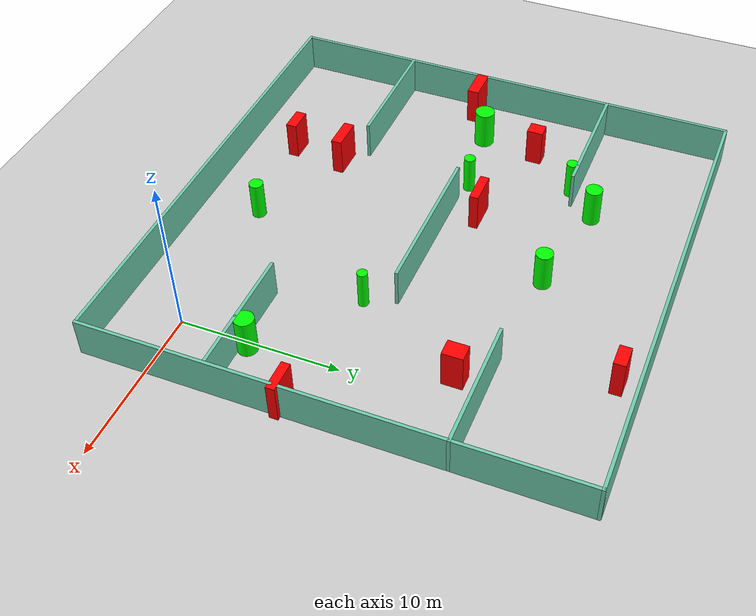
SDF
<sdf version="1.7">
 <world name="default">
  <light name="sun" type="directional">
   <pose>0 0 10 0 -0 0</pose>
   <diffuse>0.8 0.8 0.8 1</diffuse>
   <specular>0.2 0.2 0.2 1</specular>
   <attenuation>
    <range>1000</range>
    <constant>0.9</constant>
    <linear>0.01</linear>
    <quadratic>0.001</quadratic>
   </attenuation>
   <direction>-0.5 0.1 -0.9</direction>
   <spot><inner_angle>0</inner_angle><outer_angle>0</outer_angle><falloff>0</falloff></spot>
  </light>
  <model name="ground_plane">
   <static>1</static>
   <link name="link">
    <collision name="collision">
     <geometry><plane><normal>0 0 1</normal><size>100 100</size></plane></geometry>
     <surface>
      <contact><collide_bitmask>65535</collide_bitmask></contact>
      <friction><ode><mu>100</mu><mu2>50</mu2></ode></friction>
     </surface>
    </collision>
    <visual name="visual">
     <cast_shadows>0</cast_shadows>
     <geometry><plane><normal>0 0 1</normal><size>100 100</size></plane></geometry>
     <material>
      <script><uri>file://media/materials/scripts/gazebo.material</uri><name>Gazebo/Grey</name></script>
     </material>
    </visual>
   </link>
  </model>
  <gravity>0 0 -9.8</gravity>
  <magnetic_field>6e-06 2.3e-05 -4.2e-05</magnetic_field>
  <atmosphere type="adiabatic"/>
  <physics type="ode">
   <max_step_size>0.001</max_step_size>
   <real_time_factor>1</real_time_factor>
   <real_time_update_rate>1000</real_time_update_rate>
  </physics>
  <scene><ambient>0.4 0.4 0.4 1</ambient><background>0.7 0.7 0.7 1</background><shadows>1</shadows></scene>
  <spherical_coordinates>
   <surface_model>EARTH_WGS84</surface_model>
   <latitude_deg>0</latitude_deg>
   <longitude_deg>0</longitude_deg>
   <elevation>0</elevation>
   <heading_deg>0</heading_deg>
  </spherical_coordinates>
  <model name="my_base_walls">
   <link name="Wall_10">
    <collision name="Wall_10_Collision">
     <geometry><box><size>8.2 0.2 2.5</size></box></geometry>
     <pose>0 0 1.25 0 -0 0</pose>
    </collision>
    <visual name="Wall_10_Visual">
     <pose>0 0 1.25 0 -0 0</pose>
     <geometry><box><size>8.2 0.2 2.5</size></box></geometry>
     <material>
      <script><uri>file://media/materials/scripts/gazebo.material</uri><name>Gazebo/Grey</name></script>
      <ambient>0.435294 0.796078 0.67451 1</ambient>
     </material>
     <meta><layer>0</layer></meta>
    </visual>
    <pose>-11 -7 0 0 -0 0</pose>
   </link>
   <link name="Wall_12">
    <collision name="Wall_12_Collision">
     <geometry><box><size>8.2 0.2 2.5</size></box></geometry>
     <pose>0 0 1.25 0 -0 0</pose>
    </collision>
    <visual name="Wall_12_Visual">
     <pose>0 0 1.25 0 -0 0</pose>
     <geometry><box><size>8.2 0.2 2.5</size></box></geometry>
     <material>
      <script><uri>file://media/materials/scripts/gazebo.material</uri><name>Gazebo/Grey</name></script>
      <ambient>0.435294 0.796078 0.67451 1</ambient>
     </material>
     <meta><layer>0</layer></meta>
    </visual>
    <pose>-11 7 0 0 -0 0</pose>
   </link>
   <link name="Wall_14">
    <collision name="Wall_14_Collision">
     <geometry><box><size>8.2 0.2 2.5</size></box></geometry>
     <pose>0 0 1.25 0 -0 0</pose>
    </collision>
    <visual name="Wall_14_Visual">
     <pose>0 0 1.25 0 -0 0</pose>
     <geometry><box><size>8.2 0.2 2.5</size></box></geometry>
     <material>
      <script><uri>file://media/materials/scripts/gazebo.material</uri><name>Gazebo/Grey</name></script>
      <ambient>0.435294 0.796078 0.67451 1</ambient>
     </material>
     <meta><layer>0</layer></meta>
    </visual>
    <pose>11 7 0 0 -0 3.14159</pose>
   </link>
   <link name="Wall_16">
    <collision name="Wall_16_Collision">
     <geometry><box><size>10.2 0.2 2.5</size></box></geometry>
     <pose>0 0 1.25 0 -0 0</pose>
    </collision>
    <visual name="Wall_16_Visual">
     <pose>0 0 1.25 0 -0 0</pose>
     <geometry><box><size>10.2 0.2 2.5</size></box></geometry>
     <material>
      <script><uri>file://media/materials/scripts/gazebo.material</uri><name>Gazebo/Grey</name></script>
      <ambient>0.435294 0.796078 0.67451 1</ambient>
     </material>
     <meta><layer>0</layer></meta>
    </visual>
    <pose>0 0 0 0 -0 3.14159</pose>
   </link>
   <link name="Wall_2">
    <collision name="Wall_2_Collision">
     <geometry><box><size>30.2 0.2 2.5</size></box></geometry>
     <pose>0 0 1.25 0 -0 0</pose>
    </collision>
    <visual name="Wall_2_Visual">
     <pose>0 0 1.25 0 -0 0</pose>
     <geometry><box><size>30.2 0.2 2.5</size></box></geometry>
     <material>
      <script><uri>file://media/materials/scripts/gazebo.material</uri><name>Gazebo/Grey</name></script>
      <ambient>0.435294 0.796078 0.67451 1</ambient>
     </material>
     <meta><layer>0</layer></meta>
    </visual>
    <pose>0 -15 0 0 -0 3.14159</pose>
   </link>
   <link name="Wall_3">
    <collision name="Wall_3_Collision">
     <geometry><box><size>30.2 0.2 2.5</size></box></geometry>
     <pose>0 0 1.25 0 -0 0</pose>
    </collision>
    <visual name="Wall_3_Visual">
     <pose>0 0 1.25 0 -0 0</pose>
     <geometry><box><size>30.2 0.2 2.5</size></box></geometry>
     <material>
      <script><uri>file://media/materials/scripts/gazebo.material</uri><name>Gazebo/Grey</name></script>
      <ambient>0.435294 0.796078 0.67451 1</ambient>
     </material>
     <meta><layer>0</layer></meta>
    </visual>
    <pose>-15 0 0 0 -0 1.5708</pose>
   </link>
   <link name="Wall_4">
    <collision name="Wall_4_Collision">
     <geometry><box><size>30.2 0.2 2.5</size></box></geometry>
     <pose>0 0 1.25 0 -0 0</pose>
    </collision>
    <visual name="Wall_4_Visual">
     <pose>0 0 1.25 0 -0 0</pose>
     <geometry><box><size>30.2 0.2 2.5</size></box></geometry>
     <material>
      <script><uri>file://media/materials/scripts/gazebo.material</uri><name>Gazebo/Grey</name></script>
      <ambient>0.435294 0.796078 0.67451 1</ambient>
     </material>
     <meta><layer>0</layer></meta>
    </visual>
    <pose>0 15 0 0 -0 0</pose>
   </link>
   <link name="Wall_6">
    <collision name="Wall_6_Collision">
     <geometry><box><size>30.2 0.2 2.5</size></box></geometry>
     <pose>0 0 1.25 0 -0 0</pose>
    </collision>
    <visual name="Wall_6_Visual">
     <pose>0 0 1.25 0 -0 0</pose>
     <geometry><box><size>30.2 0.2 2.5</size></box></geometry>
     <material>
      <script><uri>file://media/materials/scripts/gazebo.material</uri><name>Gazebo/Grey</name></script>
      <ambient>0.435294 0.796078 0.67451 1</ambient>
     </material>
     <meta><layer>0</layer></meta>
    </visual>
    <pose>15 0 0 0 -0 1.5708</pose>
   </link>
   <link name="Wall_8">
    <collision name="Wall_8_Collision">
     <geometry><box><size>8.2 0.2 2.5</size></box></geometry>
     <pose>0 0 1.25 0 -0 0</pose>
    </collision>
    <visual name="Wall_8_Visual">
     <pose>0 0 1.25 0 -0 0</pose>
     <geometry><box><size>8.2 0.2 2.5</size></box></geometry>
     <material>
      <script><uri>file://media/materials/scripts/gazebo.material</uri><name>Gazebo/Grey</name></script>
      <ambient>0.435294 0.796078 0.67451 1</ambient>
     </material>
     <meta><layer>0</layer></meta>
    </visual>
    <pose>11 -7 0 0 -0 3.14159</pose>
   </link>
   <static>1</static>
   <pose>-11 11 0 0 -0 0</pose>
  </model>
  <model name="cylinder1">
   <static>1</static>
   <link name="link">
    <inertial>
     <mass>1</mass>
     <inertia><ixx>0.5</ixx><ixy>0</ixy><ixz>0</ixz><iyy>0.5</iyy><iyz>0</iyz><izz>1</izz></inertia>
    </inertial>
    <collision name="collision">
     <geometry><cylinder><radius>0.323207683018099</radius><length>2.5</length></cylinder></geometry>
    </collision>
    <visual name="visual">
     <geometry><cylinder><radius>0.323207683018099</radius><length>2.5</length></cylinder></geometry>
     <material>
      <ambient>0 1 0 1</ambient>
      <diffuse>0 1 0 1</diffuse>
      <specular>0.1 0.1 0.1 1</specular>
      <emissive>0 0 0 0</emissive>
     </material>
    </visual>
   </link>
   <pose>-5.242812602132382 9.169725267744901 1.25 0 0 0</pose>
  </model>
  <model name="cylinder2">
   <static>1</static>
   <link name="link">
    <inertial>
     <mass>1</mass>
     <inertia><ixx>0.5</ixx><ixy>0</ixy><ixz>0</ixz><iyy>0.5</iyy><iyz>0</iyz><izz>1</izz></inertia>
    </inertial>
    <collision name="collision">
     <geometry><cylinder><radius>0.44611260763702354</radius><length>2.5</length></cylinder></geometry>
    </collision>
    <visual name="visual">
     <geometry><cylinder><radius>0.44611260763702354</radius><length>2.5</length></cylinder></geometry>
     <material>
      <ambient>0 1 0 1</ambient>
      <diffuse>0 1 0 1</diffuse>
      <specular>0.1 0.1 0.1 1</specular>
      <emissive>0 0 0 0</emissive>
     </material>
    </visual>
   </link>
   <pose>-10.039613787207871 -0.16693218351852313 1.25 0 0 0</pose>
  </model>
  <model name="cylinder3">
   <static>1</static>
   <link name="link">
    <inertial>
     <mass>1</mass>
     <inertia><ixx>0.5</ixx><ixy>0</ixy><ixz>0</ixz><iyy>0.5</iyy><iyz>0</iyz><izz>1</izz></inertia>
    </inertial>
    <collision name="collision">
     <geometry><cylinder><radius>0.3639457886893316</radius><length>2.5</length></cylinder></geometry>
    </collision>
    <visual name="visual">
     <geometry><cylinder><radius>0.3639457886893316</radius><length>2.5</length></cylinder></geometry>
     <material>
      <ambient>0 1 0 1</ambient>
      <diffuse>0 1 0 1</diffuse>
      <specular>0.1 0.1 0.1 1</specular>
      <emissive>0 0 0 0</emissive>
     </material>
    </visual>
   </link>
   <pose>-17.235187009401685 11.376394661364884 1.25 0 0 0</pose>
  </model>
  <model name="cylinder4">
   <static>1</static>
   <link name="link">
    <inertial>
     <mass>1</mass>
     <inertia><ixx>0.5</ixx><ixy>0</ixy><ixz>0</ixz><iyy>0.5</iyy><iyz>0</iyz><izz>1</izz></inertia>
    </inertial>
    <collision name="collision">
     <geometry><cylinder><radius>0.6411223356292828</radius><length>2.5</length></cylinder></geometry>
    </collision>
    <visual name="visual">
     <geometry><cylinder><radius>0.6411223356292828</radius><length>2.5</length></cylinder></geometry>
     <material>
      <ambient>0 1 0 1</ambient>
      <diffuse>0 1 0 1</diffuse>
      <specular>0.1 0.1 0.1 1</specular>
      <emissive>0 0 0 0</emissive>
     </material>
    </visual>
   </link>
   <pose>-22.195993633424678 10.66126298685144 1.25 0 0 0</pose>
  </model>
  <model name="cylinder5">
   <static>1</static>
   <link name="link">
    <inertial>
     <mass>1</mass>
     <inertia><ixx>0.5</ixx><ixy>0</ixy><ixz>0</ixz><iyy>0.5</iyy><iyz>0</iyz><izz>1</izz></inertia>
    </inertial>
    <collision name="collision">
     <geometry><cylinder><radius>0.5362647128211879</radius><length>2.5</length></cylinder></geometry>
    </collision>
    <visual name="visual">
     <geometry><cylinder><radius>0.5362647128211879</radius><length>2.5</length></cylinder></geometry>
     <material>
      <ambient>0 1 0 1</ambient>
      <diffuse>0 1 0 1</diffuse>
      <specular>0.1 0.1 0.1 1</specular>
      <emissive>0 0 0 0</emissive>
     </material>
    </visual>
   </link>
   <pose>-17.1481758987657 19.596218294402952 1.25 0 0 0</pose>
  </model>
  <model name="cylinder6">
   <static>1</static>
   <link name="link">
    <inertial>
     <mass>1</mass>
     <inertia><ixx>0.5</ixx><ixy>0</ixy><ixz>0</ixz><iyy>0.5</iyy><iyz>0</iyz><izz>1</izz></inertia>
    </inertial>
    <collision name="collision">
     <geometry><cylinder><radius>0.5405698628439928</radius><length>2.5</length></cylinder></geometry>
    </collision>
    <visual name="visual">
     <geometry><cylinder><radius>0.5405698628439928</radius><length>2.5</length></cylinder></geometry>
     <material>
      <ambient>0 1 0 1</ambient>
      <diffuse>0 1 0 1</diffuse>
      <specular>0.1 0.1 0.1 1</specular>
      <emissive>0 0 0 0</emissive>
     </material>
    </visual>
   </link>
   <pose>-10.603153700359865 18.431199997905807 1.25 0 0 0</pose>
  </model>
  <model name="cylinder7">
   <static>1</static>
   <link name="link">
    <inertial>
     <mass>1</mass>
     <inertia><ixx>0.5</ixx><ixy>0</ixy><ixz>0</ixz><iyy>0.5</iyy><iyz>0</iyz><izz>1</izz></inertia>
    </inertial>
    <collision name="collision">
     <geometry><cylinder><radius>0.6095235270207195</radius><length>2.5</length></cylinder></geometry>
    </collision>
    <visual name="visual">
     <geometry><cylinder><radius>0.6095235270207195</radius><length>2.5</length></cylinder></geometry>
     <material>
      <ambient>0 1 0 1</ambient>
      <diffuse>0 1 0 1</diffuse>
      <specular>0.1 0.1 0.1 1</specular>
      <emissive>0 0 0 0</emissive>
     </material>
    </visual>
   </link>
   <pose>0.40489126441870127 4.517315794995401 1.25 0 0 0</pose>
  </model>
  <model name="cylinder8">
   <static>1</static>
   <link name="link">
    <inertial>
     <mass>1</mass>
     <inertia><ixx>0.5</ixx><ixy>0</ixy><ixz>0</ixz><iyy>0.5</iyy><iyz>0</iyz><izz>1</izz></inertia>
    </inertial>
    <collision name="collision">
     <geometry><cylinder><radius>0.36431650045486924</radius><length>2.5</length></cylinder></geometry>
    </collision>
    <visual name="visual">
     <geometry><cylinder><radius>0.36431650045486924</radius><length>2.5</length></cylinder></geometry>
     <material>
      <ambient>0 1 0 1</ambient>
      <diffuse>0 1 0 1</diffuse>
      <specular>0.1 0.1 0.1 1</specular>
      <emissive>0 0 0 0</emissive>
     </material>
    </visual>
   </link>
   <pose>-19.10368544796281 17.63042105168674 1.25 0 0 0</pose>
  </model>
  <model name="box1">
   <static>1</static>
   <link name="link">
    <inertial>
     <mass>1</mass>
     <inertia><ixx>0.083</ixx><ixy>0</ixy><ixz>0</ixz><iyy>0.083</iyy><iyz>0</iyz><izz>0.083</izz></inertia>
    </inertial>
    <collision name="collision">
     <geometry><box><size>2.0710305549972388 0.7544360751664115 2.5</size></box></geometry>
    </collision>
    <visual name="visual">
     <geometry><box><size>2.0710305549972388 0.7544360751664115 2.5</size></box></geometry>
     <material>
      <ambient>1 0 0 1</ambient>
      <diffuse>1 0 0 1</diffuse>
      <specular>0.1 0.1 0.1 1</specular>
      <emissive>0 0 0 0</emissive>
     </material>
    </visual>
    <sensor name="my_contact" type="contact">
     <contact><collision>box_collision</collision><topic>__default_topic__</topic></contact>
    </sensor>
   </link>
   <pose>-25.03490165454751 9.149974565031584 1.25 0 0 0</pose>
  </model>
  <model name="box2">
   <static>1</static>
   <link name="link">
    <inertial>
     <mass>1</mass>
     <inertia><ixx>0.083</ixx><ixy>0</ixy><ixz>0</ixz><iyy>0.083</iyy><iyz>0</iyz><izz>0.083</izz></inertia>
    </inertial>
    <collision name="collision">
     <geometry><box><size>1.0488800943264427 1.2866668009803472 2.5</size></box></geometry>
    </collision>
    <visual name="visual">
     <geometry><box><size>1.0488800943264427 1.2866668009803472 2.5</size></box></geometry>
     <material>
      <ambient>1 0 0 1</ambient>
      <diffuse>1 0 0 1</diffuse>
      <specular>0.1 0.1 0.1 1</specular>
      <emissive>0 0 0 0</emissive>
     </material>
    </visual>
    <sensor name="my_contact" type="contact">
     <contact><collision>box_collision</collision><topic>__default_topic__</topic></contact>
    </sensor>
   </link>
   <pose>-1.7106076620796848 16.204086233817915 1.25 0 0 0</pose>
  </model>
  <model name="box3">
   <static>1</static>
   <link name="link">
    <inertial>
     <mass>1</mass>
     <inertia><ixx>0.083</ixx><ixy>0</ixy><ixz>0</ixz><iyy>0.083</iyy><iyz>0</iyz><izz>0.083</izz></inertia>
    </inertial>
    <collision name="collision">
     <geometry><box><size>2.090440109196779 0.5703362799460512 2.5</size></box></geometry>
    </collision>
    <visual name="visual">
     <geometry><box><size>2.090440109196779 0.5703362799460512 2.5</size></box></geometry>
     <material>
      <ambient>1 0 0 1</ambient>
      <diffuse>1 0 0 1</diffuse>
      <specular>0.1 0.1 0.1 1</specular>
      <emissive>0 0 0 0</emissive>
     </material>
    </visual>
    <sensor name="my_contact" type="contact">
     <contact><collision>box_collision</collision><topic>__default_topic__</topic></contact>
    </sensor>
   </link>
   <pose>-14.767228682174714 12.89902542538541 1.25 0 0 0</pose>
  </model>
  <model name="box4">
   <static>1</static>
   <link name="link">
    <inertial>
     <mass>1</mass>
     <inertia><ixx>0.083</ixx><ixy>0</ixy><ixz>0</ixz><iyy>0.083</iyy><iyz>0</iyz><izz>0.083</izz></inertia>
    </inertial>
    <collision name="collision">
     <geometry><box><size>1.399915682918992 0.7287237822422555 2.5</size></box></geometry>
    </collision>
    <visual name="visual">
     <geometry><box><size>1.399915682918992 0.7287237822422555 2.5</size></box></geometry>
     <material>
      <ambient>1 0 0 1</ambient>
      <diffuse>1 0 0 1</diffuse>
      <specular>0.1 0.1 0.1 1</specular>
      <emissive>0 0 0 0</emissive>
     </material>
    </visual>
    <sensor name="my_contact" type="contact">
     <contact><collision>box_collision</collision><topic>__default_topic__</topic></contact>
    </sensor>
   </link>
   <pose>-4.605487137512554 24.682245936334603 1.25 0 0 0</pose>
  </model>
  <model name="box5">
   <static>1</static>
   <link name="link">
    <inertial>
     <mass>1</mass>
     <inertia><ixx>0.083</ixx><ixy>0</ixy><ixz>0</ixz><iyy>0.083</iyy><iyz>0</iyz><izz>0.083</izz></inertia>
    </inertial>
    <collision name="collision">
     <geometry><box><size>1.9102031449065313 0.5489219850659182 2.5</size></box></geometry>
    </collision>
    <visual name="visual">
     <geometry><box><size>1.9102031449065313 0.5489219850659182 2.5</size></box></geometry>
     <material>
      <ambient>1 0 0 1</ambient>
      <diffuse>1 0 0 1</diffuse>
      <specular>0.1 0.1 0.1 1</specular>
      <emissive>0 0 0 0</emissive>
     </material>
    </visual>
    <sensor name="my_contact" type="contact">
     <contact><collision>box_collision</collision><topic>__default_topic__</topic></contact>
    </sensor>
   </link>
   <pose>3.3916262011257565 8.142789018722778 1.25 0 0 0</pose>
  </model>
  <model name="box6">
   <static>1</static>
   <link name="link">
    <inertial>
     <mass>1</mass>
     <inertia><ixx>0.083</ixx><ixy>0</ixy><ixz>0</ixz><iyy>0.083</iyy><iyz>0</iyz><izz>0.083</izz></inertia>
    </inertial>
    <collision name="collision">
     <geometry><box><size>1.5317168101375551 0.6899409795152203 2.5</size></box></geometry>
    </collision>
    <visual name="visual">
     <geometry><box><size>1.5317168101375551 0.6899409795152203 2.5</size></box></geometry>
     <material>
      <ambient>1 0 0 1</ambient>
      <diffuse>1 0 0 1</diffuse>
      <specular>0.1 0.1 0.1 1</specular>
      <emissive>0 0 0 0</emissive>
     </material>
    </visual>
    <sensor name="my_contact" type="contact">
     <contact><collision>box_collision</collision><topic>__default_topic__</topic></contact>
    </sensor>
   </link>
   <pose>-16.842419467031977 -0.7202677558679942 1.25 0 0 0</pose>
  </model>
  <model name="box7">
   <static>1</static>
   <link name="link">
    <inertial>
     <mass>1</mass>
     <inertia><ixx>0.083</ixx><ixy>0</ixy><ixz>0</ixz><iyy>0.083</iyy><iyz>0</iyz><izz>0.083</izz></inertia>
    </inertial>
    <collision name="collision">
     <geometry><box><size>0.9203358705567859 1.0335171441107447 2.5</size></box></geometry>
    </collision>
    <visual name="visual">
     <geometry><box><size>0.9203358705567859 1.0335171441107447 2.5</size></box></geometry>
     <material>
      <ambient>1 0 0 1</ambient>
      <diffuse>1 0 0 1</diffuse>
      <specular>0.1 0.1 0.1 1</specular>
      <emissive>0 0 0 0</emissive>
     </material>
    </visual>
    <sensor name="my_contact" type="contact">
     <contact><collision>box_collision</collision><topic>__default_topic__</topic></contact>
    </sensor>
   </link>
   <pose>-21.686292360084195 14.436735345247723 1.25 0 0 0</pose>
  </model>
  <model name="box8">
   <static>1</static>
   <link name="link">
    <inertial>
     <mass>1</mass>
     <inertia><ixx>0.083</ixx><ixy>0</ixy><ixz>0</ixz><iyy>0.083</iyy><iyz>0</iyz><izz>0.083</izz></inertia>
    </inertial>
    <collision name="collision">
     <geometry><box><size>2.045527731580417 0.6832344514641581 2.5</size></box></geometry>
    </collision>
    <visual name="visual">
     <geometry><box><size>2.045527731580417 0.6832344514641581 2.5</size></box></geometry>
     <material>
      <ambient>1 0 0 1</ambient>
      <diffuse>1 0 0 1</diffuse>
      <specular>0.1 0.1 0.1 1</specular>
      <emissive>0 0 0 0</emissive>
     </material>
    </visual>
    <sensor name="my_contact" type="contact">
     <contact><collision>box_collision</collision><topic>__default_topic__</topic></contact>
    </sensor>
   </link>
   <pose>-16.627568051269122 2.7606418293092343 1.25 0 0 0</pose>
  </model>
 </world>
</sdf>
